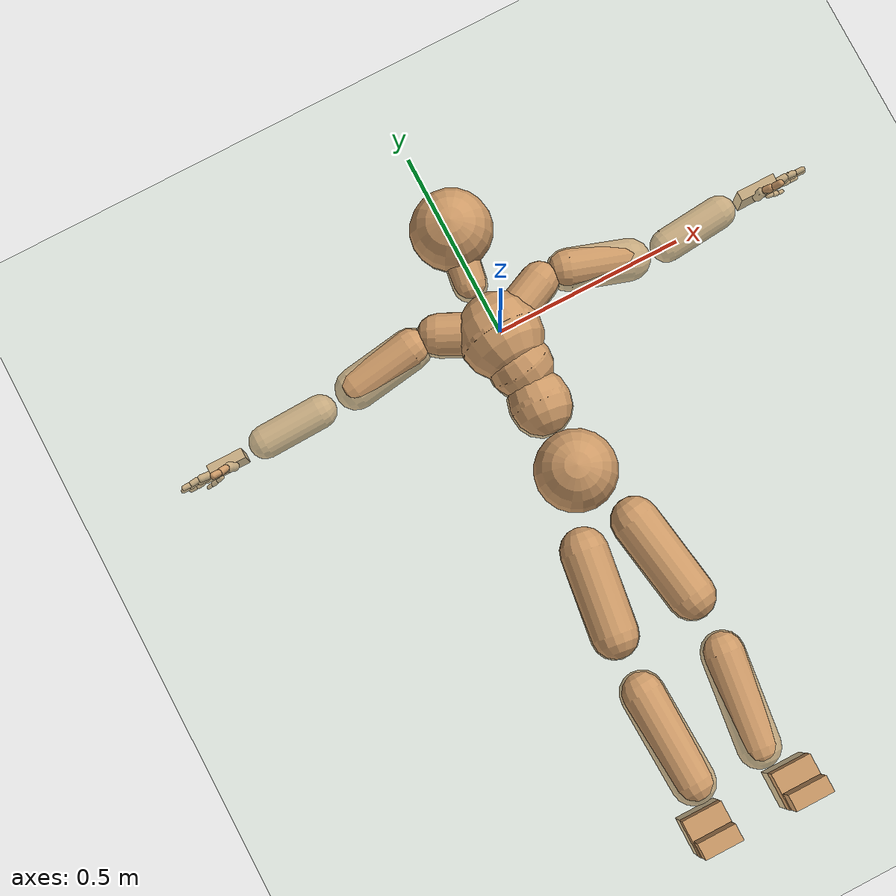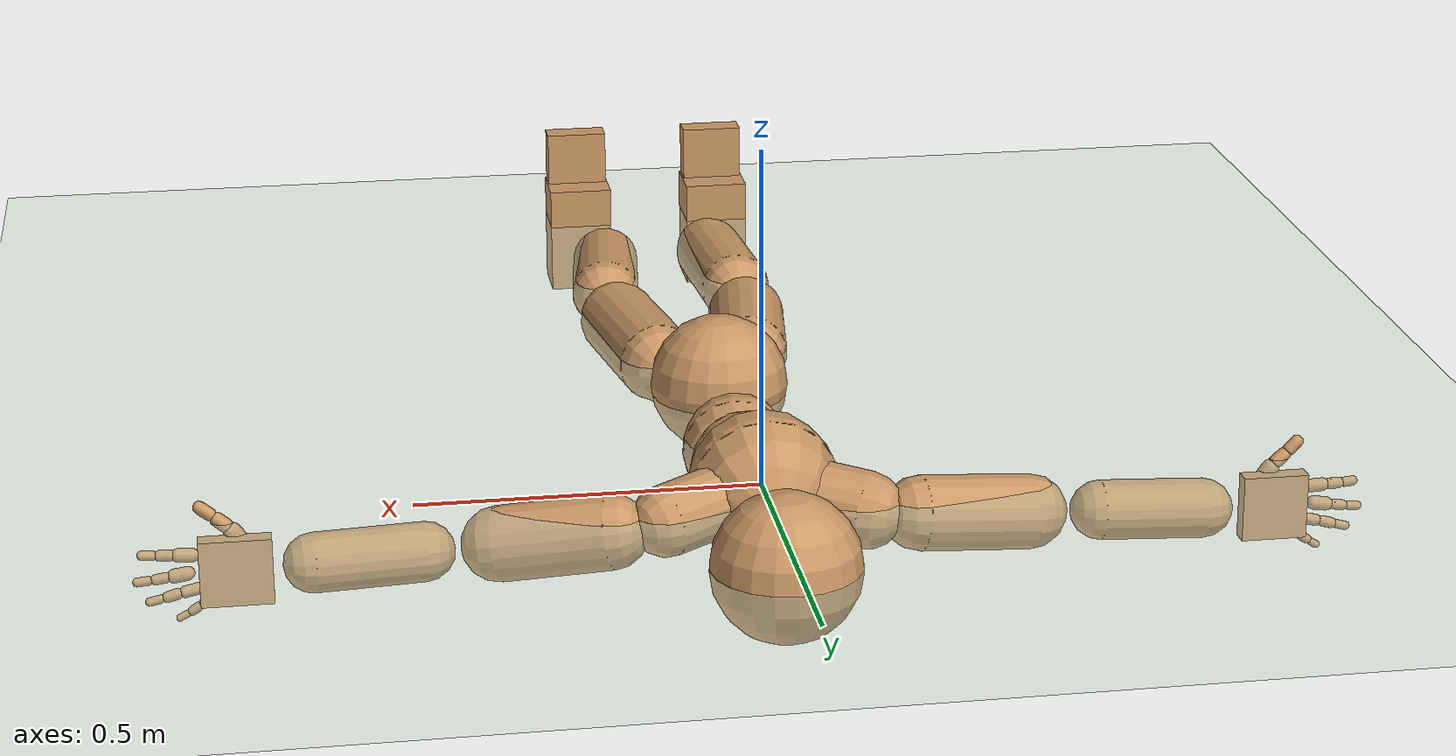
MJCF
<mujoco model="humanoid">
  <compiler coordinate="local"/>
  <default>
    <joint damping="0.0" armature="0.01" stiffness="0.0" limited="true"/>
    <geom conaffinity="1" condim="3" contype="7" margin="0.001" rgba="0.8 0.6 .4 1"/>
  </default>
  <asset>
    <texture type="skybox" builtin="gradient" rgb1=".4 .5 .6" rgb2="0 0 0" width="100" height="100"/>
    <texture builtin="flat" height="1278" mark="cross" markrgb="1 1 1" name="texgeom" random="0.01" rgb1="0.8 0.6 0.4" rgb2="0.8 0.6 0.4" type="cube" width="127"/>
    <texture builtin="checker" height="100" name="texplane" rgb1="0 0 0" rgb2="0.8 0.8 0.8" type="2d" width="100"/>
    <material name="MatPlane" reflectance="0.5" shininess="1" specular="1" texrepeat="60 60" texture="texplane"/>
    <material name="geom" texture="texgeom" texuniform="true"/>
  </asset>
  <worldbody>
    <light cutoff="100" diffuse="1 1 1" dir="-0 0 -1.3" directional="true" exponent="1" pos="0 0 1.3" specular=".1 .1 .1"/>
    <geom conaffinity="1" condim="3" name="floor" pos="0 0 0" rgba="0.8 0.9 0.8 1" size="100 100 .2" type="plane" material="MatPlane"/>
    <body name="Pelvis" pos="0.003 -0.3966 0.0131">
      <freejoint name="Pelvis"/>
      <geom type="sphere" contype="1" conaffinity="1" density="4629.6296296296305" size="0.1063" pos="0.0000 0.0000 0.0000" name="Pelvis"/>
      <body name="L_Hip" pos="0.0605 -0.0998 -0.0257">
        <joint name="L_Hip_x" type="hinge" pos="0 0 0" axis="1 0 0" user="250 2.5 1 500 10 2" armature="0.01" range="-90.0000 90.0000" damping="0" stiffness="0"/>
        <joint name="L_Hip_y" type="hinge" pos="0 0 0" axis="0 1 0" user="250 2.5 1 500 10 2" armature="0.01" range="-90.0000 90.0000" damping="0" stiffness="0"/>
        <joint name="L_Hip_z" type="hinge" pos="0 0 0" axis="0 0 1" user="250 2.5 1 500 10 2" armature="0.01" range="-90.0000 90.0000" damping="0" stiffness="0"/>
        <geom type="capsule" contype="1" conaffinity="1" density="2040.816327" fromto="0.0120 -0.0763 -0.0012 0.0481 -0.3053 -0.0048" size="0.0626" name="L_Hip"/>
        <body name="L_Knee" pos="0.0601 -0.3816 -0.0059">
          <joint name="L_Knee_x" type="hinge" pos="0 0 0" axis="1 0 0" user="250 2.5 1 500 10 2" armature="0.01" range="-180.0000 180.0000" damping="0" stiffness="0"/>
          <joint name="L_Knee_y" type="hinge" pos="0 0 0" axis="0 1 0" user="250 2.5 1 500 10 2" armature="0.01" range="-5.6250 5.6250" damping="0" stiffness="0"/>
          <joint name="L_Knee_z" type="hinge" pos="0 0 0" axis="0 0 1" user="250 2.5 1 500 10 2" armature="0.01" range="-5.6250 5.6250" damping="0" stiffness="0"/>
          <geom type="capsule" contype="1" conaffinity="1" density="1234.567901" fromto="-0.0093 -0.0819 -0.0067 -0.0372 -0.3278 -0.0268" size="0.0561" name="L_Knee"/>
          <body name="L_Ankle" pos="-0.0464 -0.4097 -0.0335">
            <joint name="L_Ankle_x" type="hinge" pos="0 0 0" axis="1 0 0" user="150 2.5 1 500 10 2" armature="0.01" range="-90.0000 90.0000" damping="0" stiffness="0"/>
            <joint name="L_Ankle_y" type="hinge" pos="0 0 0" axis="0 1 0" user="150 2.5 1 500 10 2" armature="0.01" range="-90.0000 90.0000" damping="0" stiffness="0"/>
            <joint name="L_Ankle_z" type="hinge" pos="0 0 0" axis="0 0 1" user="150 2.5 1 500 10 2" armature="0.01" range="-90.0000 90.0000" damping="0" stiffness="0"/>
            <geom type="box" density="455.603073" pos="0.0444 -0.0297 0.0246" size="0.0534 0.0486 0.09" quat="1.0000 0.0000 0.0000 0.0000" name="L_Ankle"/>
            <body name="L_Toe" pos="0.0516 -0.06 0.1244">
              <joint name="L_Toe_x" type="hinge" pos="0 0 0" axis="1 0 0" user="150 1 1 500 1 1" armature="0.01" range="-90.0000 90.0000" damping="0" stiffness="0"/>
              <joint name="L_Toe_y" type="hinge" pos="0 0 0" axis="0 1 0" user="150 1 1 500 1 1" armature="0.01" range="-45.0000 45.0000" damping="0" stiffness="0"/>
              <joint name="L_Toe_z" type="hinge" pos="0 0 0" axis="0 0 1" user="150 1 1 500 1 1" armature="0.01" range="-45.0000 45.0000" damping="0" stiffness="0"/>
              <geom type="box" density="424.813318" pos="-0.0072 0.0033 0.0269" size="0.0509 0.0216 0.0522" quat="1.0000 0.0000 0.0000 0.0000" name="L_Toe"/>
            </body>
          </body>
        </body>
      </body>
      <body name="R_Hip" pos="-0.0654 -0.1124 -0.0197">
        <joint name="R_Hip_x" type="hinge" pos="0 0 0" axis="1 0 0" user="250 2.5 1 500 10 2" armature="0.01" range="-90.0000 90.0000" damping="0" stiffness="0"/>
        <joint name="R_Hip_y" type="hinge" pos="0 0 0" axis="0 1 0" user="250 2.5 1 500 10 2" armature="0.01" range="-90.0000 90.0000" damping="0" stiffness="0"/>
        <joint name="R_Hip_z" type="hinge" pos="0 0 0" axis="0 0 1" user="250 2.5 1 500 10 2" armature="0.01" range="-90.0000 90.0000" damping="0" stiffness="0"/>
        <geom type="capsule" contype="1" conaffinity="1" density="2040.816327" fromto="-0.0098 -0.0727 -0.0029 -0.0393 -0.2908 -0.0117" size="0.0619" name="R_Hip"/>
        <body name="R_Knee" pos="-0.0491 -0.3635 -0.0146">
          <joint name="R_Knee_x" type="hinge" pos="0 0 0" axis="1 0 0" user="250 2.5 1 500 10 2" armature="0.01" range="-180.0000 180.0000" damping="0" stiffness="0"/>
          <joint name="R_Knee_y" type="hinge" pos="0 0 0" axis="0 1 0" user="250 2.5 1 500 10 2" armature="0.01" range="-5.6250 5.6250" damping="0" stiffness="0"/>
          <joint name="R_Knee_z" type="hinge" pos="0 0 0" axis="0 0 1" user="250 2.5 1 500 10 2" armature="0.01" range="-5.6250 5.6250" damping="0" stiffness="0"/>
          <geom type="capsule" contype="1" conaffinity="1" density="1234.567901" fromto="0.0032 -0.0835 -0.0042 0.0127 -0.3342 -0.0169" size="0.0578" name="R_Knee"/>
          <body name="R_Ankle" pos="0.0159 -0.4177 -0.0211">
            <joint name="R_Ankle_x" type="hinge" pos="0 0 0" axis="1 0 0" user="150 1 1 500 10 2" armature="0.01" range="-90.0000 90.0000" damping="0" stiffness="0"/>
            <joint name="R_Ankle_y" type="hinge" pos="0 0 0" axis="0 1 0" user="150 1 1 500 10 2" armature="0.01" range="-90.0000 90.0000" damping="0" stiffness="0"/>
            <joint name="R_Ankle_z" type="hinge" pos="0 0 0" axis="0 0 1" user="150 1 1 500 10 2" armature="0.01" range="-90.0000 90.0000" damping="0" stiffness="0"/>
            <geom type="box" density="455.592391" pos="-0.0261 -0.0271 0.0148" size="0.0534 0.0486 0.09" quat="1.0000 0.0000 0.0000 0.0000" name="R_Ankle"/>
            <body name="R_Toe" pos="-0.0418 -0.0601 0.1251">
              <joint name="R_Toe_x" type="hinge" pos="0 0 0" axis="1 0 0" user="150 1 1 500 1 1" armature="0.01" range="-90.0000 90.0000" damping="0" stiffness="0"/>
              <joint name="R_Toe_y" type="hinge" pos="0 0 0" axis="0 1 0" user="150 1 1 500 1 1" armature="0.01" range="-45.0000 45.0000" damping="0" stiffness="0"/>
              <joint name="R_Toe_z" type="hinge" pos="0 0 0" axis="0 0 1" user="150 1 1 500 1 1" armature="0.01" range="-45.0000 45.0000" damping="0" stiffness="0"/>
              <geom type="box" density="424.807709" pos="0.0156 0.0060 0.0165" size="0.0509 0.0216 0.0522" quat="1.0000 0.0000 0.0000 0.0000" name="R_Toe"/>
            </body>
          </body>
        </body>
      </body>
      <body name="Torso" pos="-0.003 0.1192 -0.0322">
        <joint name="Torso_x" type="hinge" pos="0 0 0" axis="1 0 0" user="500 5 1 500 10 2" armature="0.01" range="-60.0000 60.0000" damping="0" stiffness="0"/>
        <joint name="Torso_y" type="hinge" pos="0 0 0" axis="0 1 0" user="500 5 1 500 10 2" armature="0.01" range="-60.0000 60.0000" damping="0" stiffness="0"/>
        <joint name="Torso_z" type="hinge" pos="0 0 0" axis="0 0 1" user="500 5 1 500 10 2" armature="0.01" range="-60.0000 60.0000" damping="0" stiffness="0"/>
        <geom type="capsule" contype="1" conaffinity="1" density="2040.816327" fromto="0.0051 0.0678 -0.0029 0.0063 0.0829 -0.0036" size="0.0809" name="Torso"/>
        <body name="Spine" pos="0.0114 0.1508 -0.0065">
          <joint name="Spine_x" type="hinge" pos="0 0 0" axis="1 0 0" user="500 5 1 500 10 2" armature="0.01" range="-60.0000 60.0000" damping="0" stiffness="0"/>
          <joint name="Spine_y" type="hinge" pos="0 0 0" axis="0 1 0" user="500 5 1 500 10 2" armature="0.01" range="-60.0000 60.0000" damping="0" stiffness="0"/>
          <joint name="Spine_z" type="hinge" pos="0 0 0" axis="0 0 1" user="500 5 1 500 10 2" armature="0.01" range="-60.0000 60.0000" damping="0" stiffness="0"/>
          <geom type="capsule" contype="1" conaffinity="1" density="2040.816327" fromto="-0.0055 0.0268 0.0126 -0.0067 0.0328 0.0154" size="0.0838" name="Spine"/>
          <body name="Chest" pos="-0.0122 0.0596 0.028">
            <joint name="Chest_x" type="hinge" pos="0 0 0" axis="1 0 0" user="500 5 1 500 10 2" armature="0.01" range="-60.0000 60.0000" damping="0" stiffness="0"/>
            <joint name="Chest_y" type="hinge" pos="0 0 0" axis="0 1 0" user="500 5 1 500 10 2" armature="0.01" range="-60.0000 60.0000" damping="0" stiffness="0"/>
            <joint name="Chest_z" type="hinge" pos="0 0 0" axis="0 0 1" user="500 5 1 500 10 2" armature="0.01" range="-60.0000 60.0000" damping="0" stiffness="0"/>
            <geom type="capsule" contype="1" conaffinity="1" density="2040.816327" fromto="-0.0025 0.0545 -0.0073 -0.0030 0.0666 -0.0089" size="0.1092" name="Chest"/>
            <body name="Neck" pos="-0.0136 0.1799 -0.0304">
              <joint name="Neck_x" type="hinge" pos="0 0 0" axis="1 0 0" user="150 1 1 250 50 4" armature="0.01" range="-180.0000 180.0000" damping="0" stiffness="0"/>
              <joint name="Neck_y" type="hinge" pos="0 0 0" axis="0 1 0" user="150 1 1 250 50 4" armature="0.01" range="-180.0000 180.0000" damping="0" stiffness="0"/>
              <joint name="Neck_z" type="hinge" pos="0 0 0" axis="0 0 1" user="150 1 1 250 50 4" armature="0.01" range="-180.0000 180.0000" damping="0" stiffness="0"/>
              <geom type="capsule" contype="1" conaffinity="1" density="1000" fromto="0.0054 0.0354 0.0047 0.0216 0.1417 0.0188" size="0.0457" name="Neck"/>
              <body name="Head" pos="0.027 0.1771 0.0235">
                <joint name="Head_x" type="hinge" pos="0 0 0" axis="1 0 0" user="150 1 1 250 50 4" armature="0.01" range="-90.0000 90.0000" damping="0" stiffness="0"/>
                <joint name="Head_y" type="hinge" pos="0 0 0" axis="0 1 0" user="150 1 1 250 50 4" armature="0.01" range="-90.0000 90.0000" damping="0" stiffness="0"/>
                <joint name="Head_z" type="hinge" pos="0 0 0" axis="0 0 1" user="150 1 1 250 50 4" armature="0.01" range="-90.0000 90.0000" damping="0" stiffness="0"/>
                <geom type="sphere" contype="1" conaffinity="1" density="1000" size="0.1067" pos="0.0000 0.0000 0.0000" name="Head"/>
              </body>
            </body>
            <body name="L_Thorax" pos="0.048 0.092 -0.0061">
              <joint name="L_Thorax_x" type="hinge" pos="0 0 0" axis="1 0 0" user="200 2 1 500 50 4" armature="0.01" range="-180.0000 180.0000" damping="0" stiffness="0"/>
              <joint name="L_Thorax_y" type="hinge" pos="0 0 0" axis="0 1 0" user="200 2 1 500 50 4" armature="0.01" range="-180.0000 180.0000" damping="0" stiffness="0"/>
              <joint name="L_Thorax_z" type="hinge" pos="0 0 0" axis="0 0 1" user="200 2 1 500 50 4" armature="0.01" range="-180.0000 180.0000" damping="0" stiffness="0"/>
              <geom type="capsule" contype="1" conaffinity="1" density="1000" fromto="0.0255 0.0119 -0.0033 0.1020 0.0477 -0.0134" size="0.0518" name="L_Thorax"/>
              <body name="L_Shoulder" pos="0.1275 0.0596 -0.0167">
                <joint name="L_Shoulder_x" type="hinge" pos="0 0 0" axis="1 0 0" user="200 2 1 500 50 4" armature="0.01" range="-180.0000 180.0000" damping="0" stiffness="0"/>
                <joint name="L_Shoulder_y" type="hinge" pos="0 0 0" axis="0 1 0" user="200 2 1 500 50 4" armature="0.01" range="-180.0000 180.0000" damping="0" stiffness="0"/>
                <joint name="L_Shoulder_z" type="hinge" pos="0 0 0" axis="0 0 1" user="200 2 1 500 50 4" armature="0.01" range="-180.0000 180.0000" damping="0" stiffness="0"/>
                <geom type="capsule" contype="1" conaffinity="1" density="1000" fromto="0.0518 -0.0150 -0.0090 0.2072 -0.0602 -0.0358" size="0.0548" name="L_Shoulder"/>
                <body name="L_Elbow" pos="0.2591 -0.0752 -0.0448">
                  <joint name="L_Elbow_x" type="hinge" pos="0 0 0" axis="1 0 0" user="150 1 1 150 10 2" armature="0.01" range="-720.0000 720.0000" damping="0" stiffness="0"/>
                  <joint name="L_Elbow_y" type="hinge" pos="0 0 0" axis="0 1 0" user="150 1 1 150 10 2" armature="0.01" range="-720.0000 720.0000" damping="0" stiffness="0"/>
                  <joint name="L_Elbow_z" type="hinge" pos="0 0 0" axis="0 0 1" user="150 1 1 150 10 2" armature="0.01" range="-720.0000 720.0000" damping="0" stiffness="0"/>
                  <geom type="capsule" contype="1" conaffinity="1" density="1000" fromto="0.0526 0.0048 -0.0000 0.2105 0.0193 -0.0001" size="0.0433" name="L_Elbow"/>
                  <body name="L_Wrist" pos="0.2631 0.0241 -0.0001">
                    <joint name="L_Wrist_x" type="hinge" pos="0 0 0" axis="1 0 0" user="100 1 1 150 1 1" armature="0.01" range="-180.0000 180.0000" damping="0" stiffness="0"/>
                    <joint name="L_Wrist_y" type="hinge" pos="0 0 0" axis="0 1 0" user="100 1 1 150 1 1" armature="0.01" range="-180.0000 180.0000" damping="0" stiffness="0"/>
                    <joint name="L_Wrist_z" type="hinge" pos="0 0 0" axis="0 0 1" user="100 1 1 150 1 1" armature="0.01" range="-180.0000 180.0000" damping="0" stiffness="0"/>
                    <geom type="box" density="1212.770224" pos="0.0557 -0.0016 -0.0030" size="0.0515 0.0133 0.0489" quat="1.0000 0.0000 0.0000 0.0000" name="L_Wrist"/>
                    <body name="L_Index1" pos="0.1083 -0.0088 0.0207">
                      <joint name="L_Index1_x" type="hinge" pos="0 0 0" axis="1 0 0" user="100 10 1 150" armature="0.01" range="-180.0000 180.0000" damping="0" stiffness="0"/>
                      <joint name="L_Index1_y" type="hinge" pos="0 0 0" axis="0 1 0" user="100 10 1 150" armature="0.01" range="-180.0000 180.0000" damping="0" stiffness="0"/>
                      <joint name="L_Index1_z" type="hinge" pos="0 0 0" axis="0 0 1" user="100 10 1 150" armature="0.01" range="-180.0000 180.0000" damping="0" stiffness="0"/>
                      <geom type="capsule" contype="1" conaffinity="1" density="1000" fromto="0.0066 0.0005 0.0006 0.0265 0.0020 0.0023" size="0.0098" name="L_Index1"/>
                      <body name="L_Index2" pos="0.0332 0.0025 0.0029">
                        <joint name="L_Index2_x" type="hinge" pos="0 0 0" axis="1 0 0" user="100 10 1 150" armature="0.01" range="-180.0000 180.0000" damping="0" stiffness="0"/>
                        <joint name="L_Index2_y" type="hinge" pos="0 0 0" axis="0 1 0" user="100 10 1 150" armature="0.01" range="-180.0000 180.0000" damping="0" stiffness="0"/>
                        <joint name="L_Index2_z" type="hinge" pos="0 0 0" axis="0 0 1" user="100 10 1 150" armature="0.01" range="-180.0000 180.0000" damping="0" stiffness="0"/>
                        <geom type="capsule" contype="1" conaffinity="1" density="1000" fromto="0.0047 -0.0005 -0.0000 0.0186 -0.0020 -0.0002" size="0.0081" name="L_Index2"/>
                        <body name="L_Index3" pos="0.0233 -0.0025 -0.0002">
                          <joint name="L_Index3_x" type="hinge" pos="0 0 0" axis="1 0 0" user="100 10 1 150" armature="0.01" range="-180.0000 180.0000" damping="0" stiffness="0"/>
                          <joint name="L_Index3_y" type="hinge" pos="0 0 0" axis="0 1 0" user="100 10 1 150" armature="0.01" range="-180.0000 180.0000" damping="0" stiffness="0"/>
                          <joint name="L_Index3_z" type="hinge" pos="0 0 0" axis="0 0 1" user="100 10 1 150" armature="0.01" range="-180.0000 180.0000" damping="0" stiffness="0"/>
                          <geom type="capsule" contype="1" conaffinity="1" density="1000" fromto="0.0051 -0.0001 0.0004 0.0202 -0.0004 0.0014" size="0.0068" name="L_Index3"/>
                        </body>
                      </body>
                    </body>
                    <body name="L_Middle1" pos="0.1164 -0.0062 -0.0042">
                      <joint name="L_Middle1_x" type="hinge" pos="0 0 0" axis="1 0 0" user="100 10 1 150" armature="0.01" range="-180.0000 180.0000" damping="0" stiffness="0"/>
                      <joint name="L_Middle1_y" type="hinge" pos="0 0 0" axis="0 1 0" user="100 10 1 150" armature="0.01" range="-180.0000 180.0000" damping="0" stiffness="0"/>
                      <joint name="L_Middle1_z" type="hinge" pos="0 0 0" axis="0 0 1" user="100 10 1 150" armature="0.01" range="-180.0000 180.0000" damping="0" stiffness="0"/>
                      <geom type="capsule" contype="1" conaffinity="1" density="1000" fromto="0.0063 0.0002 -0.0008 0.0254 0.0007 -0.0033" size="0.0101" name="L_Middle1"/>
                      <body name="L_Middle2" pos="0.0317 0.0009 -0.0042">
                        <joint name="L_Middle2_x" type="hinge" pos="0 0 0" axis="1 0 0" user="100 10 1 150" armature="0.01" range="-180.0000 180.0000" damping="0" stiffness="0"/>
                        <joint name="L_Middle2_y" type="hinge" pos="0 0 0" axis="0 1 0" user="100 10 1 150" armature="0.01" range="-180.0000 180.0000" damping="0" stiffness="0"/>
                        <joint name="L_Middle2_z" type="hinge" pos="0 0 0" axis="0 0 1" user="100 10 1 150" armature="0.01" range="-180.0000 180.0000" damping="0" stiffness="0"/>
                        <geom type="capsule" contype="1" conaffinity="1" density="1000" fromto="0.0049 -0.0004 -0.0009 0.0194 -0.0017 -0.0035" size="0.0075" name="L_Middle2"/>
                        <body name="L_Middle3" pos="0.0243 -0.0022 -0.0043">
                          <joint name="L_Middle3_x" type="hinge" pos="0 0 0" axis="1 0 0" user="100 10 1 150" armature="0.01" range="-180.0000 180.0000" damping="0" stiffness="0"/>
                          <joint name="L_Middle3_y" type="hinge" pos="0 0 0" axis="0 1 0" user="100 10 1 150" armature="0.01" range="-180.0000 180.0000" damping="0" stiffness="0"/>
                          <joint name="L_Middle3_z" type="hinge" pos="0 0 0" axis="0 0 1" user="100 10 1 150" armature="0.01" range="-180.0000 180.0000" damping="0" stiffness="0"/>
                          <geom type="capsule" contype="1" conaffinity="1" density="1000" fromto="0.0053 -0.0000 -0.0005 0.0210 -0.0001 -0.0019" size="0.0065" name="L_Middle3"/>
                        </body>
                      </body>
                    </body>
                    <body name="L_Pinky1" pos="0.0899 -0.0153 -0.0464">
                      <joint name="L_Pinky1_x" type="hinge" pos="0 0 0" axis="1 0 0" user="100 10 1 150" armature="0.01" range="-180.0000 180.0000" damping="0" stiffness="0"/>
                      <joint name="L_Pinky1_y" type="hinge" pos="0 0 0" axis="0 1 0" user="100 10 1 150" armature="0.01" range="-180.0000 180.0000" damping="0" stiffness="0"/>
                      <joint name="L_Pinky1_z" type="hinge" pos="0 0 0" axis="0 0 1" user="100 10 1 150" armature="0.01" range="-180.0000 180.0000" damping="0" stiffness="0"/>
                      <geom type="capsule" contype="1" conaffinity="1" density="1000" fromto="0.0033 -0.0003 -0.0025 0.0133 -0.0011 -0.0099" size="0.0071" name="L_Pinky1"/>
                      <body name="L_Pinky2" pos="0.0166 -0.0013 -0.0123">
                        <joint name="L_Pinky2_x" type="hinge" pos="0 0 0" axis="1 0 0" user="100 10 1 150" armature="0.01" range="-180.0000 180.0000" damping="0" stiffness="0"/>
                        <joint name="L_Pinky2_y" type="hinge" pos="0 0 0" axis="0 1 0" user="100 10 1 150" armature="0.01" range="-180.0000 180.0000" damping="0" stiffness="0"/>
                        <joint name="L_Pinky2_z" type="hinge" pos="0 0 0" axis="0 0 1" user="100 10 1 150" armature="0.01" range="-180.0000 180.0000" damping="0" stiffness="0"/>
                        <geom type="capsule" contype="1" conaffinity="1" density="1000" fromto="0.0033 -0.0004 -0.0023 0.0131 -0.0015 -0.0091" size="0.0068" name="L_Pinky2"/>
                        <body name="L_Pinky3" pos="0.0164 -0.0019 -0.0114">
                          <joint name="L_Pinky3_x" type="hinge" pos="0 0 0" axis="1 0 0" user="100 10 1 150" armature="0.01" range="-180.0000 180.0000" damping="0" stiffness="0"/>
                          <joint name="L_Pinky3_y" type="hinge" pos="0 0 0" axis="0 1 0" user="100 10 1 150" armature="0.01" range="-180.0000 180.0000" damping="0" stiffness="0"/>
                          <joint name="L_Pinky3_z" type="hinge" pos="0 0 0" axis="0 0 1" user="100 10 1 150" armature="0.01" range="-180.0000 180.0000" damping="0" stiffness="0"/>
                          <geom type="capsule" contype="1" conaffinity="1" density="1000" fromto="0.0037 0.0000 -0.0019 0.0147 0.0001 -0.0075" size="0.0052" name="L_Pinky3"/>
                        </body>
                      </body>
                    </body>
                    <body name="L_Ring1" pos="0.104 -0.0094 -0.0291">
                      <joint name="L_Ring1_x" type="hinge" pos="0 0 0" axis="1 0 0" user="100 10 1 150" armature="0.01" range="-180.0000 180.0000" damping="0" stiffness="0"/>
                      <joint name="L_Ring1_y" type="hinge" pos="0 0 0" axis="0 1 0" user="100 10 1 150" armature="0.01" range="-180.0000 180.0000" damping="0" stiffness="0"/>
                      <joint name="L_Ring1_z" type="hinge" pos="0 0 0" axis="0 0 1" user="100 10 1 150" armature="0.01" range="-180.0000 180.0000" damping="0" stiffness="0"/>
                      <geom type="capsule" contype="1" conaffinity="1" density="1000" fromto="0.0059 0.0003 -0.0011 0.0236 0.0014 -0.0044" size="0.0085" name="L_Ring1"/>
                      <body name="L_Ring2" pos="0.0295 0.0017 -0.0054">
                        <joint name="L_Ring2_x" type="hinge" pos="0 0 0" axis="1 0 0" user="100 10 1 150" armature="0.01" range="-180.0000 180.0000" damping="0" stiffness="0"/>
                        <joint name="L_Ring2_y" type="hinge" pos="0 0 0" axis="0 1 0" user="100 10 1 150" armature="0.01" range="-180.0000 180.0000" damping="0" stiffness="0"/>
                        <joint name="L_Ring2_z" type="hinge" pos="0 0 0" axis="0 0 1" user="100 10 1 150" armature="0.01" range="-180.0000 180.0000" damping="0" stiffness="0"/>
                        <geom type="capsule" contype="1" conaffinity="1" density="1000" fromto="0.0047 -0.0003 -0.0015 0.0190 -0.0013 -0.0059" size="0.0079" name="L_Ring2"/>
                        <body name="L_Ring3" pos="0.0237 -0.0016 -0.0074">
                          <joint name="L_Ring3_x" type="hinge" pos="0 0 0" axis="1 0 0" user="100 10 1 150" armature="0.01" range="-180.0000 180.0000" damping="0" stiffness="0"/>
                          <joint name="L_Ring3_y" type="hinge" pos="0 0 0" axis="0 1 0" user="100 10 1 150" armature="0.01" range="-180.0000 180.0000" damping="0" stiffness="0"/>
                          <joint name="L_Ring3_z" type="hinge" pos="0 0 0" axis="0 0 1" user="100 10 1 150" armature="0.01" range="-180.0000 180.0000" damping="0" stiffness="0"/>
                          <geom type="capsule" contype="1" conaffinity="1" density="1000" fromto="0.0051 0.0001 -0.0011 0.0206 0.0003 -0.0043" size="0.0061" name="L_Ring3"/>
                        </body>
                      </body>
                    </body>
                    <body name="L_Thumb1" pos="0.0434 -0.0198 0.0279">
                      <joint name="L_Thumb1_x" type="hinge" pos="0 0 0" axis="1 0 0" user="100 10 1 150" armature="0.01" range="-180.0000 180.0000" damping="0" stiffness="0"/>
                      <joint name="L_Thumb1_y" type="hinge" pos="0 0 0" axis="0 1 0" user="100 10 1 150" armature="0.01" range="-180.0000 180.0000" damping="0" stiffness="0"/>
                      <joint name="L_Thumb1_z" type="hinge" pos="0 0 0" axis="0 0 1" user="100 10 1 150" armature="0.01" range="-180.0000 180.0000" damping="0" stiffness="0"/>
                      <geom type="capsule" contype="1" conaffinity="1" density="1000" fromto="0.0036 0.0003 0.0053 0.0144 0.0010 0.0212" size="0.013" name="L_Thumb1"/>
                      <body name="L_Thumb2" pos="0.018 0.0013 0.0265">
                        <joint name="L_Thumb2_x" type="hinge" pos="0 0 0" axis="1 0 0" user="100 10 1 150" armature="0.01" range="-180.0000 180.0000" damping="0" stiffness="0"/>
                        <joint name="L_Thumb2_y" type="hinge" pos="0 0 0" axis="0 1 0" user="100 10 1 150" armature="0.01" range="-180.0000 180.0000" damping="0" stiffness="0"/>
                        <joint name="L_Thumb2_z" type="hinge" pos="0 0 0" axis="0 0 1" user="100 10 1 150" armature="0.01" range="-180.0000 180.0000" damping="0" stiffness="0"/>
                        <geom type="capsule" contype="1" conaffinity="1" density="1000" fromto="0.0043 -0.0011 0.0032 0.0174 -0.0042 0.0129" size="0.0102" name="L_Thumb2"/>
                        <body name="L_Thumb3" pos="0.0217 -0.0053 0.0161">
                          <joint name="L_Thumb3_x" type="hinge" pos="0 0 0" axis="1 0 0" user="100 10 1 150" armature="0.01" range="-180.0000 180.0000" damping="0" stiffness="0"/>
                          <joint name="L_Thumb3_y" type="hinge" pos="0 0 0" axis="0 1 0" user="100 10 1 150" armature="0.01" range="-180.0000 180.0000" damping="0" stiffness="0"/>
                          <joint name="L_Thumb3_z" type="hinge" pos="0 0 0" axis="0 0 1" user="100 10 1 150" armature="0.01" range="-180.0000 180.0000" damping="0" stiffness="0"/>
                          <geom type="capsule" contype="1" conaffinity="1" density="1000" fromto="0.0047 -0.0007 0.0036 0.0190 -0.0026 0.0145" size="0.0092" name="L_Thumb3"/>
                        </body>
                      </body>
                    </body>
                  </body>
                </body>
              </body>
            </body>
            <body name="R_Thorax" pos="-0.051 0.0912 -0.0122">
              <joint name="R_Thorax_x" type="hinge" pos="0 0 0" axis="1 0 0" user="200 2 1 150 10 2" armature="0.01" range="-180.0000 180.0000" damping="0" stiffness="0"/>
              <joint name="R_Thorax_y" type="hinge" pos="0 0 0" axis="0 1 0" user="200 2 1 150 10 2" armature="0.01" range="-180.0000 180.0000" damping="0" stiffness="0"/>
              <joint name="R_Thorax_z" type="hinge" pos="0 0 0" axis="0 0 1" user="200 2 1 150 10 2" armature="0.01" range="-180.0000 180.0000" damping="0" stiffness="0"/>
              <geom type="capsule" contype="1" conaffinity="1" density="1000" fromto="-0.0220 0.0110 -0.0028 -0.0880 0.0441 -0.0111" size="0.0569" name="R_Thorax"/>
              <body name="R_Shoulder" pos="-0.11 0.0551 -0.0138">
                <joint name="R_Shoulder_x" type="hinge" pos="0 0 0" axis="1 0 0" user="200 2 1 250 10 2" armature="0.01" range="-180.0000 180.0000" damping="0" stiffness="0"/>
                <joint name="R_Shoulder_y" type="hinge" pos="0 0 0" axis="0 1 0" user="200 2 1 250 10 2" armature="0.01" range="-180.0000 180.0000" damping="0" stiffness="0"/>
                <joint name="R_Shoulder_z" type="hinge" pos="0 0 0" axis="0 0 1" user="200 2 1 250 10 2" armature="0.01" range="-180.0000 180.0000" damping="0" stiffness="0"/>
                <geom type="capsule" contype="1" conaffinity="1" density="1000" fromto="-0.0555 -0.0074 -0.0056 -0.2218 -0.0296 -0.0225" size="0.0547" name="R_Shoulder"/>
                <body name="R_Elbow" pos="-0.2773 -0.037 -0.0282">
                  <joint name="R_Elbow_x" type="hinge" pos="0 0 0" axis="1 0 0" user="150 1 1 150 10 2" armature="0.01" range="-720.0000 720.0000" damping="0" stiffness="0"/>
                  <joint name="R_Elbow_y" type="hinge" pos="0 0 0" axis="0 1 0" user="150 1 1 150 10 2" armature="0.01" range="-720.0000 720.0000" damping="0" stiffness="0"/>
                  <joint name="R_Elbow_z" type="hinge" pos="0 0 0" axis="0 0 1" user="150 1 1 150 10 2" armature="0.01" range="-720.0000 720.0000" damping="0" stiffness="0"/>
                  <geom type="capsule" contype="1" conaffinity="1" density="1000" fromto="-0.0520 -0.0011 -0.0027 -0.2079 -0.0045 -0.0109" size="0.0436" name="R_Elbow"/>
                  <body name="R_Wrist" pos="-0.2599 -0.0056 -0.0136">
                    <joint name="R_Wrist_x" type="hinge" pos="0 0 0" axis="1 0 0" user="100 1 1 150 1 1" armature="0.01" range="-180.0000 180.0000" damping="0" stiffness="0"/>
                    <joint name="R_Wrist_y" type="hinge" pos="0 0 0" axis="0 1 0" user="100 1 1 150 1 1" armature="0.01" range="-180.0000 180.0000" damping="0" stiffness="0"/>
                    <joint name="R_Wrist_z" type="hinge" pos="0 0 0" axis="0 0 1" user="100 1 1 150 1 1" armature="0.01" range="-180.0000 180.0000" damping="0" stiffness="0"/>
                    <geom type="box" density="1240.27406" pos="-0.0571 -0.0048 -0.0028" size="0.0485 0.0133 0.0489" quat="1.0000 0.0000 0.0000 0.0000" name="R_Wrist"/>
                    <body name="R_Index1" pos="-0.1063 -0.012 0.0208">
                      <joint name="R_Index1_x" type="hinge" pos="0 0 0" axis="1 0 0" user="100 10 1 150" armature="0.01" range="-180.0000 180.0000" damping="0" stiffness="0"/>
                      <joint name="R_Index1_y" type="hinge" pos="0 0 0" axis="0 1 0" user="100 10 1 150" armature="0.01" range="-180.0000 180.0000" damping="0" stiffness="0"/>
                      <joint name="R_Index1_z" type="hinge" pos="0 0 0" axis="0 0 1" user="100 10 1 150" armature="0.01" range="-180.0000 180.0000" damping="0" stiffness="0"/>
                      <geom type="capsule" contype="1" conaffinity="1" density="1000" fromto="-0.0066 0.0005 0.0006 -0.0265 0.0020 0.0023" size="0.0098" name="R_Index1"/>
                      <body name="R_Index2" pos="-0.0332 0.0025 0.0029">
                        <joint name="R_Index2_x" type="hinge" pos="0 0 0" axis="1 0 0" user="100 10 1 150" armature="0.01" range="-180.0000 180.0000" damping="0" stiffness="0"/>
                        <joint name="R_Index2_y" type="hinge" pos="0 0 0" axis="0 1 0" user="100 10 1 150" armature="0.01" range="-180.0000 180.0000" damping="0" stiffness="0"/>
                        <joint name="R_Index2_z" type="hinge" pos="0 0 0" axis="0 0 1" user="100 10 1 150" armature="0.01" range="-180.0000 180.0000" damping="0" stiffness="0"/>
                        <geom type="capsule" contype="1" conaffinity="1" density="1000" fromto="-0.0047 -0.0005 -0.0000 -0.0186 -0.0020 -0.0002" size="0.0081" name="R_Index2"/>
                        <body name="R_Index3" pos="-0.0233 -0.0025 -0.0002">
                          <joint name="R_Index3_x" type="hinge" pos="0 0 0" axis="1 0 0" user="100 10 1 150" armature="0.01" range="-180.0000 180.0000" damping="0" stiffness="0"/>
                          <joint name="R_Index3_y" type="hinge" pos="0 0 0" axis="0 1 0" user="100 10 1 150" armature="0.01" range="-180.0000 180.0000" damping="0" stiffness="0"/>
                          <joint name="R_Index3_z" type="hinge" pos="0 0 0" axis="0 0 1" user="100 10 1 150" armature="0.01" range="-180.0000 180.0000" damping="0" stiffness="0"/>
                          <geom type="capsule" contype="1" conaffinity="1" density="1000" fromto="-0.0043 -0.0001 0.0004 -0.0170 -0.0004 0.0014" size="0.0071" name="R_Index3"/>
                        </body>
                      </body>
                    </body>
                    <body name="R_Middle1" pos="-0.1144 -0.0095 -0.0041">
                      <joint name="R_Middle1_x" type="hinge" pos="0 0 0" axis="1 0 0" user="100 10 1 150" armature="0.01" range="-180.0000 180.0000" damping="0" stiffness="0"/>
                      <joint name="R_Middle1_y" type="hinge" pos="0 0 0" axis="0 1 0" user="100 10 1 150" armature="0.01" range="-180.0000 180.0000" damping="0" stiffness="0"/>
                      <joint name="R_Middle1_z" type="hinge" pos="0 0 0" axis="0 0 1" user="100 10 1 150" armature="0.01" range="-180.0000 180.0000" damping="0" stiffness="0"/>
                      <geom type="capsule" contype="1" conaffinity="1" density="1000" fromto="-0.0063 0.0002 -0.0008 -0.0254 0.0007 -0.0033" size="0.0101" name="R_Middle1"/>
                      <body name="R_Middle2" pos="-0.0317 0.0009 -0.0042">
                        <joint name="R_Middle2_x" type="hinge" pos="0 0 0" axis="1 0 0" user="100 10 1 150" armature="0.01" range="-180.0000 180.0000" damping="0" stiffness="0"/>
                        <joint name="R_Middle2_y" type="hinge" pos="0 0 0" axis="0 1 0" user="100 10 1 150" armature="0.01" range="-180.0000 180.0000" damping="0" stiffness="0"/>
                        <joint name="R_Middle2_z" type="hinge" pos="0 0 0" axis="0 0 1" user="100 10 1 150" armature="0.01" range="-180.0000 180.0000" damping="0" stiffness="0"/>
                        <geom type="capsule" contype="1" conaffinity="1" density="1000" fromto="-0.0049 -0.0004 -0.0009 -0.0194 -0.0017 -0.0035" size="0.0075" name="R_Middle2"/>
                        <body name="R_Middle3" pos="-0.0243 -0.0022 -0.0043">
                          <joint name="R_Middle3_x" type="hinge" pos="0 0 0" axis="1 0 0" user="100 10 1 150" armature="0.01" range="-180.0000 180.0000" damping="0" stiffness="0"/>
                          <joint name="R_Middle3_y" type="hinge" pos="0 0 0" axis="0 1 0" user="100 10 1 150" armature="0.01" range="-180.0000 180.0000" damping="0" stiffness="0"/>
                          <joint name="R_Middle3_z" type="hinge" pos="0 0 0" axis="0 0 1" user="100 10 1 150" armature="0.01" range="-180.0000 180.0000" damping="0" stiffness="0"/>
                          <geom type="capsule" contype="1" conaffinity="1" density="1000" fromto="-0.0045 -0.0000 -0.0005 -0.0178 -0.0001 -0.0019" size="0.0067" name="R_Middle3"/>
                        </body>
                      </body>
                    </body>
                    <body name="R_Pinky1" pos="-0.0879 -0.0185 -0.0463">
                      <joint name="R_Pinky1_x" type="hinge" pos="0 0 0" axis="1 0 0" user="100 10 1 150" armature="0.01" range="-180.0000 180.0000" damping="0" stiffness="0"/>
                      <joint name="R_Pinky1_y" type="hinge" pos="0 0 0" axis="0 1 0" user="100 10 1 150" armature="0.01" range="-180.0000 180.0000" damping="0" stiffness="0"/>
                      <joint name="R_Pinky1_z" type="hinge" pos="0 0 0" axis="0 0 1" user="100 10 1 150" armature="0.01" range="-180.0000 180.0000" damping="0" stiffness="0"/>
                      <geom type="capsule" contype="1" conaffinity="1" density="1000" fromto="-0.0033 -0.0003 -0.0025 -0.0133 -0.0011 -0.0099" size="0.0071" name="R_Pinky1"/>
                      <body name="R_Pinky2" pos="-0.0166 -0.0013 -0.0123">
                        <joint name="R_Pinky2_x" type="hinge" pos="0 0 0" axis="1 0 0" user="100 10 1 150" armature="0.01" range="-180.0000 180.0000" damping="0" stiffness="0"/>
                        <joint name="R_Pinky2_y" type="hinge" pos="0 0 0" axis="0 1 0" user="100 10 1 150" armature="0.01" range="-180.0000 180.0000" damping="0" stiffness="0"/>
                        <joint name="R_Pinky2_z" type="hinge" pos="0 0 0" axis="0 0 1" user="100 10 1 150" armature="0.01" range="-180.0000 180.0000" damping="0" stiffness="0"/>
                        <geom type="capsule" contype="1" conaffinity="1" density="1000" fromto="-0.0033 -0.0004 -0.0023 -0.0131 -0.0015 -0.0091" size="0.0068" name="R_Pinky2"/>
                        <body name="R_Pinky3" pos="-0.0164 -0.0019 -0.0114">
                          <joint name="R_Pinky3_x" type="hinge" pos="0 0 0" axis="1 0 0" user="100 10 1 150" armature="0.01" range="-180.0000 180.0000" damping="0" stiffness="0"/>
                          <joint name="R_Pinky3_y" type="hinge" pos="0 0 0" axis="0 1 0" user="100 10 1 150" armature="0.01" range="-180.0000 180.0000" damping="0" stiffness="0"/>
                          <joint name="R_Pinky3_z" type="hinge" pos="0 0 0" axis="0 0 1" user="100 10 1 150" armature="0.01" range="-180.0000 180.0000" damping="0" stiffness="0"/>
                          <geom type="capsule" contype="1" conaffinity="1" density="1000" fromto="-0.0029 0.0000 -0.0019 -0.0115 0.0001 -0.0075" size="0.0054" name="R_Pinky3"/>
                        </body>
                      </body>
                    </body>
                    <body name="R_Ring1" pos="-0.102 -0.0127 -0.029">
                      <joint name="R_Ring1_x" type="hinge" pos="0 0 0" axis="1 0 0" user="100 10 1 150" armature="0.01" range="-180.0000 180.0000" damping="0" stiffness="0"/>
                      <joint name="R_Ring1_y" type="hinge" pos="0 0 0" axis="0 1 0" user="100 10 1 150" armature="0.01" range="-180.0000 180.0000" damping="0" stiffness="0"/>
                      <joint name="R_Ring1_z" type="hinge" pos="0 0 0" axis="0 0 1" user="100 10 1 150" armature="0.01" range="-180.0000 180.0000" damping="0" stiffness="0"/>
                      <geom type="capsule" contype="1" conaffinity="1" density="1000" fromto="-0.0059 0.0003 -0.0011 -0.0236 0.0014 -0.0044" size="0.0085" name="R_Ring1"/>
                      <body name="R_Ring2" pos="-0.0295 0.0017 -0.0054">
                        <joint name="R_Ring2_x" type="hinge" pos="0 0 0" axis="1 0 0" user="100 10 1 150" armature="0.01" range="-180.0000 180.0000" damping="0" stiffness="0"/>
                        <joint name="R_Ring2_y" type="hinge" pos="0 0 0" axis="0 1 0" user="100 10 1 150" armature="0.01" range="-180.0000 180.0000" damping="0" stiffness="0"/>
                        <joint name="R_Ring2_z" type="hinge" pos="0 0 0" axis="0 0 1" user="100 10 1 150" armature="0.01" range="-180.0000 180.0000" damping="0" stiffness="0"/>
                        <geom type="capsule" contype="1" conaffinity="1" density="1000" fromto="-0.0047 -0.0003 -0.0015 -0.0190 -0.0013 -0.0059" size="0.0079" name="R_Ring2"/>
                        <body name="R_Ring3" pos="-0.0237 -0.0016 -0.0074">
                          <joint name="R_Ring3_x" type="hinge" pos="0 0 0" axis="1 0 0" user="100 10 1 150" armature="0.01" range="-180.0000 180.0000" damping="0" stiffness="0"/>
                          <joint name="R_Ring3_y" type="hinge" pos="0 0 0" axis="0 1 0" user="100 10 1 150" armature="0.01" range="-180.0000 180.0000" damping="0" stiffness="0"/>
                          <joint name="R_Ring3_z" type="hinge" pos="0 0 0" axis="0 0 1" user="100 10 1 150" armature="0.01" range="-180.0000 180.0000" damping="0" stiffness="0"/>
                          <geom type="capsule" contype="1" conaffinity="1" density="1000" fromto="-0.0043 0.0001 -0.0011 -0.0174 0.0003 -0.0043" size="0.0064" name="R_Ring3"/>
                        </body>
                      </body>
                    </body>
                    <body name="R_Thumb1" pos="-0.0414 -0.023 0.0281">
                      <joint name="R_Thumb1_x" type="hinge" pos="0 0 0" axis="1 0 0" user="100 10 1 150" armature="0.01" range="-180.0000 180.0000" damping="0" stiffness="0"/>
                      <joint name="R_Thumb1_y" type="hinge" pos="0 0 0" axis="0 1 0" user="100 10 1 150" armature="0.01" range="-180.0000 180.0000" damping="0" stiffness="0"/>
                      <joint name="R_Thumb1_z" type="hinge" pos="0 0 0" axis="0 0 1" user="100 10 1 150" armature="0.01" range="-180.0000 180.0000" damping="0" stiffness="0"/>
                      <geom type="capsule" contype="1" conaffinity="1" density="1000" fromto="-0.0036 0.0003 0.0053 -0.0144 0.0010 0.0212" size="0.013" name="R_Thumb1"/>
                      <body name="R_Thumb2" pos="-0.018 0.0013 0.0265">
                        <joint name="R_Thumb2_x" type="hinge" pos="0 0 0" axis="1 0 0" user="100 10 1 150" armature="0.01" range="-180.0000 180.0000" damping="0" stiffness="0"/>
                        <joint name="R_Thumb2_y" type="hinge" pos="0 0 0" axis="0 1 0" user="100 10 1 150" armature="0.01" range="-180.0000 180.0000" damping="0" stiffness="0"/>
                        <joint name="R_Thumb2_z" type="hinge" pos="0 0 0" axis="0 0 1" user="100 10 1 150" armature="0.01" range="-180.0000 180.0000" damping="0" stiffness="0"/>
                        <geom type="capsule" contype="1" conaffinity="1" density="1000" fromto="-0.0043 -0.0011 0.0032 -0.0174 -0.0042 0.0129" size="0.0102" name="R_Thumb2"/>
                        <body name="R_Thumb3" pos="-0.0217 -0.0053 0.0161">
                          <joint name="R_Thumb3_x" type="hinge" pos="0 0 0" axis="1 0 0" user="100 10 1 150" armature="0.01" range="-180.0000 180.0000" damping="0" stiffness="0"/>
                          <joint name="R_Thumb3_y" type="hinge" pos="0 0 0" axis="0 1 0" user="100 10 1 150" armature="0.01" range="-180.0000 180.0000" damping="0" stiffness="0"/>
                          <joint name="R_Thumb3_z" type="hinge" pos="0 0 0" axis="0 0 1" user="100 10 1 150" armature="0.01" range="-180.0000 180.0000" damping="0" stiffness="0"/>
                          <geom type="capsule" contype="1" conaffinity="1" density="1000" fromto="-0.0039 -0.0007 0.0036 -0.0158 -0.0026 0.0145" size="0.0095" name="R_Thumb3"/>
                        </body>
                      </body>
                    </body>
                  </body>
                </body>
              </body>
            </body>
          </body>
        </body>
      </body>
    </body>
  </worldbody>
  <actuator>
    <motor name="L_Hip_x" joint="L_Hip_x" gear="1"/>
    <motor name="L_Hip_y" joint="L_Hip_y" gear="1"/>
    <motor name="L_Hip_z" joint="L_Hip_z" gear="1"/>
    <motor name="L_Knee_x" joint="L_Knee_x" gear="1"/>
    <motor name="L_Knee_y" joint="L_Knee_y" gear="1"/>
    <motor name="L_Knee_z" joint="L_Knee_z" gear="1"/>
    <motor name="L_Ankle_x" joint="L_Ankle_x" gear="1"/>
    <motor name="L_Ankle_y" joint="L_Ankle_y" gear="1"/>
    <motor name="L_Ankle_z" joint="L_Ankle_z" gear="1"/>
    <motor name="L_Toe_x" joint="L_Toe_x" gear="1"/>
    <motor name="L_Toe_y" joint="L_Toe_y" gear="1"/>
    <motor name="L_Toe_z" joint="L_Toe_z" gear="1"/>
    <motor name="R_Hip_x" joint="R_Hip_x" gear="1"/>
    <motor name="R_Hip_y" joint="R_Hip_y" gear="1"/>
    <motor name="R_Hip_z" joint="R_Hip_z" gear="1"/>
    <motor name="R_Knee_x" joint="R_Knee_x" gear="1"/>
    <motor name="R_Knee_y" joint="R_Knee_y" gear="1"/>
    <motor name="R_Knee_z" joint="R_Knee_z" gear="1"/>
    <motor name="R_Ankle_x" joint="R_Ankle_x" gear="1"/>
    <motor name="R_Ankle_y" joint="R_Ankle_y" gear="1"/>
    <motor name="R_Ankle_z" joint="R_Ankle_z" gear="1"/>
    <motor name="R_Toe_x" joint="R_Toe_x" gear="1"/>
    <motor name="R_Toe_y" joint="R_Toe_y" gear="1"/>
    <motor name="R_Toe_z" joint="R_Toe_z" gear="1"/>
    <motor name="Torso_x" joint="Torso_x" gear="1"/>
    <motor name="Torso_y" joint="Torso_y" gear="1"/>
    <motor name="Torso_z" joint="Torso_z" gear="1"/>
    <motor name="Spine_x" joint="Spine_x" gear="1"/>
    <motor name="Spine_y" joint="Spine_y" gear="1"/>
    <motor name="Spine_z" joint="Spine_z" gear="1"/>
    <motor name="Chest_x" joint="Chest_x" gear="1"/>
    <motor name="Chest_y" joint="Chest_y" gear="1"/>
    <motor name="Chest_z" joint="Chest_z" gear="1"/>
    <motor name="Neck_x" joint="Neck_x" gear="1"/>
    <motor name="Neck_y" joint="Neck_y" gear="1"/>
    <motor name="Neck_z" joint="Neck_z" gear="1"/>
    <motor name="Head_x" joint="Head_x" gear="1"/>
    <motor name="Head_y" joint="Head_y" gear="1"/>
    <motor name="Head_z" joint="Head_z" gear="1"/>
    <motor name="L_Thorax_x" joint="L_Thorax_x" gear="1"/>
    <motor name="L_Thorax_y" joint="L_Thorax_y" gear="1"/>
    <motor name="L_Thorax_z" joint="L_Thorax_z" gear="1"/>
    <motor name="L_Shoulder_x" joint="L_Shoulder_x" gear="1"/>
    <motor name="L_Shoulder_y" joint="L_Shoulder_y" gear="1"/>
    <motor name="L_Shoulder_z" joint="L_Shoulder_z" gear="1"/>
    <motor name="L_Elbow_x" joint="L_Elbow_x" gear="1"/>
    <motor name="L_Elbow_y" joint="L_Elbow_y" gear="1"/>
    <motor name="L_Elbow_z" joint="L_Elbow_z" gear="1"/>
    <motor name="L_Wrist_x" joint="L_Wrist_x" gear="1"/>
    <motor name="L_Wrist_y" joint="L_Wrist_y" gear="1"/>
    <motor name="L_Wrist_z" joint="L_Wrist_z" gear="1"/>
    <motor name="L_Index1_x" joint="L_Index1_x" gear="1"/>
    <motor name="L_Index1_y" joint="L_Index1_y" gear="1"/>
    <motor name="L_Index1_z" joint="L_Index1_z" gear="1"/>
    <motor name="L_Index2_x" joint="L_Index2_x" gear="1"/>
    <motor name="L_Index2_y" joint="L_Index2_y" gear="1"/>
    <motor name="L_Index2_z" joint="L_Index2_z" gear="1"/>
    <motor name="L_Index3_x" joint="L_Index3_x" gear="1"/>
    <motor name="L_Index3_y" joint="L_Index3_y" gear="1"/>
    <motor name="L_Index3_z" joint="L_Index3_z" gear="1"/>
    <motor name="L_Middle1_x" joint="L_Middle1_x" gear="1"/>
    <motor name="L_Middle1_y" joint="L_Middle1_y" gear="1"/>
    <motor name="L_Middle1_z" joint="L_Middle1_z" gear="1"/>
    <motor name="L_Middle2_x" joint="L_Middle2_x" gear="1"/>
    <motor name="L_Middle2_y" joint="L_Middle2_y" gear="1"/>
    <motor name="L_Middle2_z" joint="L_Middle2_z" gear="1"/>
    <motor name="L_Middle3_x" joint="L_Middle3_x" gear="1"/>
    <motor name="L_Middle3_y" joint="L_Middle3_y" gear="1"/>
    <motor name="L_Middle3_z" joint="L_Middle3_z" gear="1"/>
    <motor name="L_Pinky1_x" joint="L_Pinky1_x" gear="1"/>
    <motor name="L_Pinky1_y" joint="L_Pinky1_y" gear="1"/>
    <motor name="L_Pinky1_z" joint="L_Pinky1_z" gear="1"/>
    <motor name="L_Pinky2_x" joint="L_Pinky2_x" gear="1"/>
    <motor name="L_Pinky2_y" joint="L_Pinky2_y" gear="1"/>
    <motor name="L_Pinky2_z" joint="L_Pinky2_z" gear="1"/>
    <motor name="L_Pinky3_x" joint="L_Pinky3_x" gear="1"/>
    <motor name="L_Pinky3_y" joint="L_Pinky3_y" gear="1"/>
    <motor name="L_Pinky3_z" joint="L_Pinky3_z" gear="1"/>
    <motor name="L_Ring1_x" joint="L_Ring1_x" gear="1"/>
    <motor name="L_Ring1_y" joint="L_Ring1_y" gear="1"/>
    <motor name="L_Ring1_z" joint="L_Ring1_z" gear="1"/>
    <motor name="L_Ring2_x" joint="L_Ring2_x" gear="1"/>
    <motor name="L_Ring2_y" joint="L_Ring2_y" gear="1"/>
    <motor name="L_Ring2_z" joint="L_Ring2_z" gear="1"/>
    <motor name="L_Ring3_x" joint="L_Ring3_x" gear="1"/>
    <motor name="L_Ring3_y" joint="L_Ring3_y" gear="1"/>
    <motor name="L_Ring3_z" joint="L_Ring3_z" gear="1"/>
    <motor name="L_Thumb1_x" joint="L_Thumb1_x" gear="1"/>
    <motor name="L_Thumb1_y" joint="L_Thumb1_y" gear="1"/>
    <motor name="L_Thumb1_z" joint="L_Thumb1_z" gear="1"/>
    <motor name="L_Thumb2_x" joint="L_Thumb2_x" gear="1"/>
    <motor name="L_Thumb2_y" joint="L_Thumb2_y" gear="1"/>
    <motor name="L_Thumb2_z" joint="L_Thumb2_z" gear="1"/>
    <motor name="L_Thumb3_x" joint="L_Thumb3_x" gear="1"/>
    <motor name="L_Thumb3_y" joint="L_Thumb3_y" gear="1"/>
    <motor name="L_Thumb3_z" joint="L_Thumb3_z" gear="1"/>
    <motor name="R_Thorax_x" joint="R_Thorax_x" gear="1"/>
    <motor name="R_Thorax_y" joint="R_Thorax_y" gear="1"/>
    <motor name="R_Thorax_z" joint="R_Thorax_z" gear="1"/>
    <motor name="R_Shoulder_x" joint="R_Shoulder_x" gear="1"/>
    <motor name="R_Shoulder_y" joint="R_Shoulder_y" gear="1"/>
    <motor name="R_Shoulder_z" joint="R_Shoulder_z" gear="1"/>
    <motor name="R_Elbow_x" joint="R_Elbow_x" gear="1"/>
    <motor name="R_Elbow_y" joint="R_Elbow_y" gear="1"/>
    <motor name="R_Elbow_z" joint="R_Elbow_z" gear="1"/>
    <motor name="R_Wrist_x" joint="R_Wrist_x" gear="1"/>
    <motor name="R_Wrist_y" joint="R_Wrist_y" gear="1"/>
    <motor name="R_Wrist_z" joint="R_Wrist_z" gear="1"/>
    <motor name="R_Index1_x" joint="R_Index1_x" gear="1"/>
    <motor name="R_Index1_y" joint="R_Index1_y" gear="1"/>
    <motor name="R_Index1_z" joint="R_Index1_z" gear="1"/>
    <motor name="R_Index2_x" joint="R_Index2_x" gear="1"/>
    <motor name="R_Index2_y" joint="R_Index2_y" gear="1"/>
    <motor name="R_Index2_z" joint="R_Index2_z" gear="1"/>
    <motor name="R_Index3_x" joint="R_Index3_x" gear="1"/>
    <motor name="R_Index3_y" joint="R_Index3_y" gear="1"/>
    <motor name="R_Index3_z" joint="R_Index3_z" gear="1"/>
    <motor name="R_Middle1_x" joint="R_Middle1_x" gear="1"/>
    <motor name="R_Middle1_y" joint="R_Middle1_y" gear="1"/>
    <motor name="R_Middle1_z" joint="R_Middle1_z" gear="1"/>
    <motor name="R_Middle2_x" joint="R_Middle2_x" gear="1"/>
    <motor name="R_Middle2_y" joint="R_Middle2_y" gear="1"/>
    <motor name="R_Middle2_z" joint="R_Middle2_z" gear="1"/>
    <motor name="R_Middle3_x" joint="R_Middle3_x" gear="1"/>
    <motor name="R_Middle3_y" joint="R_Middle3_y" gear="1"/>
    <motor name="R_Middle3_z" joint="R_Middle3_z" gear="1"/>
    <motor name="R_Pinky1_x" joint="R_Pinky1_x" gear="1"/>
    <motor name="R_Pinky1_y" joint="R_Pinky1_y" gear="1"/>
    <motor name="R_Pinky1_z" joint="R_Pinky1_z" gear="1"/>
    <motor name="R_Pinky2_x" joint="R_Pinky2_x" gear="1"/>
    <motor name="R_Pinky2_y" joint="R_Pinky2_y" gear="1"/>
    <motor name="R_Pinky2_z" joint="R_Pinky2_z" gear="1"/>
    <motor name="R_Pinky3_x" joint="R_Pinky3_x" gear="1"/>
    <motor name="R_Pinky3_y" joint="R_Pinky3_y" gear="1"/>
    <motor name="R_Pinky3_z" joint="R_Pinky3_z" gear="1"/>
    <motor name="R_Ring1_x" joint="R_Ring1_x" gear="1"/>
    <motor name="R_Ring1_y" joint="R_Ring1_y" gear="1"/>
    <motor name="R_Ring1_z" joint="R_Ring1_z" gear="1"/>
    <motor name="R_Ring2_x" joint="R_Ring2_x" gear="1"/>
    <motor name="R_Ring2_y" joint="R_Ring2_y" gear="1"/>
    <motor name="R_Ring2_z" joint="R_Ring2_z" gear="1"/>
    <motor name="R_Ring3_x" joint="R_Ring3_x" gear="1"/>
    <motor name="R_Ring3_y" joint="R_Ring3_y" gear="1"/>
    <motor name="R_Ring3_z" joint="R_Ring3_z" gear="1"/>
    <motor name="R_Thumb1_x" joint="R_Thumb1_x" gear="1"/>
    <motor name="R_Thumb1_y" joint="R_Thumb1_y" gear="1"/>
    <motor name="R_Thumb1_z" joint="R_Thumb1_z" gear="1"/>
    <motor name="R_Thumb2_x" joint="R_Thumb2_x" gear="1"/>
    <motor name="R_Thumb2_y" joint="R_Thumb2_y" gear="1"/>
    <motor name="R_Thumb2_z" joint="R_Thumb2_z" gear="1"/>
    <motor name="R_Thumb3_x" joint="R_Thumb3_x" gear="1"/>
    <motor name="R_Thumb3_y" joint="R_Thumb3_y" gear="1"/>
    <motor name="R_Thumb3_z" joint="R_Thumb3_z" gear="1"/>
  </actuator>
  <contact>
    <exclude body1="Torso" body2="Chest"/>
    <exclude body1="Head" body2="Chest"/>
    <exclude body1="R_Knee" body2="R_Toe"/>
    <exclude body1="R_Knee" body2="L_Ankle"/>
    <exclude body1="R_Knee" body2="L_Toe"/>
    <exclude body1="L_Knee" body2="L_Toe"/>
    <exclude body1="L_Knee" body2="R_Ankle"/>
    <exclude body1="L_Knee" body2="R_Toe"/>
    <exclude body1="L_Shoulder" body2="Chest"/>
    <exclude body1="R_Shoulder" body2="Chest"/>
  </contact>
  <sensor/>
  <size njmax="700" nconmax="700"/>
</mujoco>
